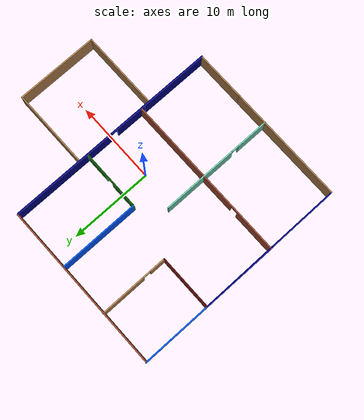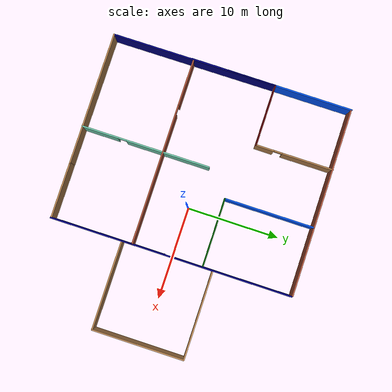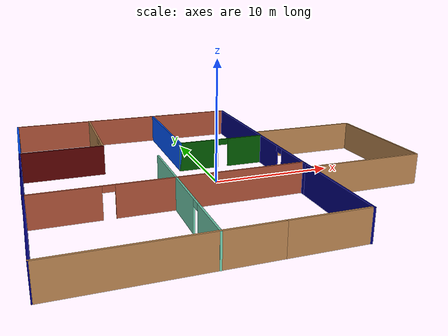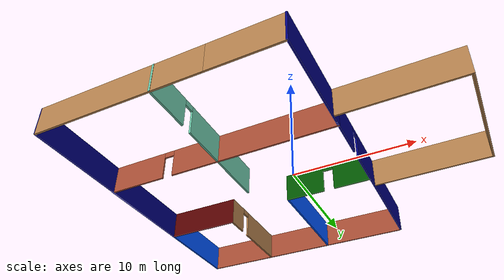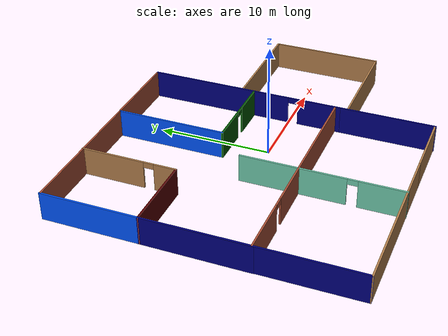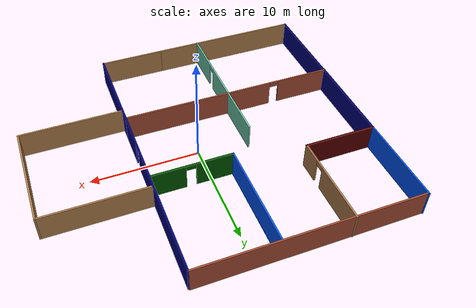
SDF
<?xml version='1.0'?>
<sdf version='1.6'>
  <model name='RGB_Walls_And_Doors'>
    <link name='Wall_13'>
      <pose frame=''>-4.768 13.0532 0 0 -0 3.14159</pose>
      <self_collide>0</self_collide>
      <kinematic>0</kinematic>
      <visual name='Wall_13_Visual'>
        <pose frame=''>0 0 1.25 0 -0 0</pose>
        <geometry>
          <box>
            <size>20.35 0.15 2.5</size>
          </box>
        </geometry>
        <material>
          <script>
            <uri>file://media/materials/scripts/gazebo.material</uri>
            <name>Gazebo/Bricks</name>
          </script>
          <ambient>1 1 1 1</ambient>
          <diffuse>1 1 1 1</diffuse>
          <specular>0.2 0.2 0.2 1</specular>
          <emissive>0 0 0 1</emissive>
        </material>
        <cast_shadows>1</cast_shadows>
        <transparency>0</transparency>
      </visual>
      <collision name='Wall_13_Collision'>
        <laser_retro>0</laser_retro>
        <max_contacts>10</max_contacts>
        <pose frame=''>0 0 1.25 0 -0 0</pose>
        <geometry>
          <box>
            <size>20.35 0.15 2.5</size>
          </box>
        </geometry>
        <surface>
          <friction>
            <ode>
              <mu>1</mu>
              <mu2>1</mu2>
              <fdir1>0 0 0</fdir1>
              <slip1>0</slip1>
              <slip2>0</slip2>
            </ode>
            <torsional>
              <coefficient>1</coefficient>
              <patch_radius>0</patch_radius>
              <surface_radius>0</surface_radius>
              <use_patch_radius>1</use_patch_radius>
              <ode>
                <slip>0</slip>
              </ode>
            </torsional>
          </friction>
          <bounce>
            <restitution_coefficient>0</restitution_coefficient>
            <threshold>1e+06</threshold>
          </bounce>
          <contact>
            <collide_without_contact>0</collide_without_contact>
            <collide_without_contact_bitmask>1</collide_without_contact_bitmask>
            <collide_bitmask>1</collide_bitmask>
            <ode>
              <soft_cfm>0</soft_cfm>
              <soft_erp>0.2</soft_erp>
              <kp>1e+13</kp>
              <kd>1</kd>
              <max_vel>0.01</max_vel>
              <min_depth>0</min_depth>
            </ode>
            <bullet>
              <split_impulse>1</split_impulse>
              <split_impulse_penetration_threshold>-0.01</split_impulse_penetration_threshold>
              <soft_cfm>0</soft_cfm>
              <soft_erp>0.2</soft_erp>
              <kp>1e+13</kp>
              <kd>1</kd>
            </bullet>
          </contact>
        </surface>
      </collision>
    </link>
    <link name='Wall_15'>
      <pose frame=''>-7.693 -13.0468 0 0 -0 3.14159</pose>
      <self_collide>0</self_collide>
      <kinematic>0</kinematic>
      <visual name='Wall_15_Visual'>
        <pose frame=''>0 0 1.25 0 -0 0</pose>
        <geometry>
          <box>
            <size>14.5 0.15 2.5</size>
          </box>
        </geometry>
        <material>
          <script>
            <uri>file://media/materials/scripts/gazebo.material</uri>
            <name>Gazebo/Wood</name>
          </script>
          <ambient>1 1 1 1</ambient>
          <diffuse>1 1 1 1</diffuse>
          <specular>0.2 0.2 0.2 1</specular>
          <emissive>0 0 0 1</emissive>
        </material>
        <cast_shadows>1</cast_shadows>
        <transparency>0</transparency>
      </visual>
      <collision name='Wall_15_Collision'>
        <laser_retro>0</laser_retro>
        <max_contacts>10</max_contacts>
        <pose frame=''>0 0 1.25 0 -0 0</pose>
        <geometry>
          <box>
            <size>14.5 0.15 2.5</size>
          </box>
        </geometry>
        <surface>
          <friction>
            <ode>
              <mu>1</mu>
              <mu2>1</mu2>
              <fdir1>0 0 0</fdir1>
              <slip1>0</slip1>
              <slip2>0</slip2>
            </ode>
            <torsional>
              <coefficient>1</coefficient>
              <patch_radius>0</patch_radius>
              <surface_radius>0</surface_radius>
              <use_patch_radius>1</use_patch_radius>
              <ode>
                <slip>0</slip>
              </ode>
            </torsional>
          </friction>
          <bounce>
            <restitution_coefficient>0</restitution_coefficient>
            <threshold>1e+06</threshold>
          </bounce>
          <contact>
            <collide_without_contact>0</collide_without_contact>
            <collide_without_contact_bitmask>1</collide_without_contact_bitmask>
            <collide_bitmask>1</collide_bitmask>
            <ode>
              <soft_cfm>0</soft_cfm>
              <soft_erp>0.2</soft_erp>
              <kp>1e+13</kp>
              <kd>1</kd>
              <max_vel>0.01</max_vel>
              <min_depth>0</min_depth>
            </ode>
            <bullet>
              <split_impulse>1</split_impulse>
              <split_impulse_penetration_threshold>-0.01</split_impulse_penetration_threshold>
              <soft_cfm>0</soft_cfm>
              <soft_erp>0.2</soft_erp>
              <kp>1e+13</kp>
              <kd>1</kd>
            </bullet>
          </contact>
        </surface>
      </collision>
    </link>
    <link name='Wall_19'>
      <pose frame=''>14.9404 -0.436235 0 0 -0 1.5708</pose>
      <self_collide>0</self_collide>
      <kinematic>0</kinematic>
      <visual name='Wall_19_Visual'>
        <pose frame=''>0 0 1.25 0 -0 0</pose>
        <geometry>
          <box>
            <size>10 0.15 2.5</size>
          </box>
        </geometry>
        <material>
          <script>
            <uri>file://media/materials/scripts/gazebo.material</uri>
            <name>Gazebo/Wood</name>
          </script>
          <ambient>1 1 1 1</ambient>
          <diffuse>1 1 1 1</diffuse>
          <specular>0.2 0.2 0.2 1</specular>
          <emissive>0 0 0 1</emissive>
        </material>
        <cast_shadows>1</cast_shadows>
        <transparency>0</transparency>
      </visual>
      <collision name='Wall_19_Collision'>
        <laser_retro>0</laser_retro>
        <max_contacts>10</max_contacts>
        <pose frame=''>0 0 1.25 0 -0 0</pose>
        <geometry>
          <box>
            <size>10 0.15 2.5</size>
          </box>
        </geometry>
        <surface>
          <friction>
            <ode>
              <mu>1</mu>
              <mu2>1</mu2>
              <fdir1>0 0 0</fdir1>
              <slip1>0</slip1>
              <slip2>0</slip2>
            </ode>
            <torsional>
              <coefficient>1</coefficient>
              <patch_radius>0</patch_radius>
              <surface_radius>0</surface_radius>
              <use_patch_radius>1</use_patch_radius>
              <ode>
                <slip>0</slip>
              </ode>
            </torsional>
          </friction>
          <bounce>
            <restitution_coefficient>0</restitution_coefficient>
            <threshold>1e+06</threshold>
          </bounce>
          <contact>
            <collide_without_contact>0</collide_without_contact>
            <collide_without_contact_bitmask>1</collide_without_contact_bitmask>
            <collide_bitmask>1</collide_bitmask>
            <ode>
              <soft_cfm>0</soft_cfm>
              <soft_erp>0.2</soft_erp>
              <kp>1e+13</kp>
              <kd>1</kd>
              <max_vel>0.01</max_vel>
              <min_depth>0</min_depth>
            </ode>
            <bullet>
              <split_impulse>1</split_impulse>
              <split_impulse_penetration_threshold>-0.01</split_impulse_penetration_threshold>
              <soft_cfm>0</soft_cfm>
              <soft_erp>0.2</soft_erp>
              <kp>1e+13</kp>
              <kd>1</kd>
            </bullet>
          </contact>
        </surface>
      </collision>
    </link>
    <link name='Wall_23'>
      <pose frame=''>1.6654 3.38876 0 0 -0 3.14159</pose>
      <self_collide>0</self_collide>
      <kinematic>0</kinematic>
      <visual name='Wall_23_Visual_0'>
        <pose frame=''>-2.17368 0 1.25 0 -0 0</pose>
        <geometry>
          <box>
            <size>3.15264 0.15 2.5</size>
          </box>
        </geometry>
        <material>
          <script>
            <uri>file://media/materials/scripts/gazebo.material</uri>
            <name>Gazebo/Grey</name>
          </script>
          <ambient>0 0.333333 0 1</ambient>
          <diffuse>0.7 0.7 0.7 1</diffuse>
          <specular>0.01 0.01 0.01 1</specular>
          <emissive>0 0 0 1</emissive>
        </material>
        <cast_shadows>1</cast_shadows>
        <transparency>0</transparency>
      </visual>
      <visual name='Wall_23_Visual_1'>
        <pose frame=''>2.02632 0 1.25 0 -0 0</pose>
        <geometry>
          <box>
            <size>3.44736 0.15 2.5</size>
          </box>
        </geometry>
        <material>
          <script>
            <uri>file://media/materials/scripts/gazebo.material</uri>
            <name>Gazebo/Grey</name>
          </script>
          <ambient>0 0.333333 0 1</ambient>
          <diffuse>0.7 0.7 0.7 1</diffuse>
          <specular>0.01 0.01 0.01 1</specular>
          <emissive>0 0 0 1</emissive>
        </material>
        <cast_shadows>1</cast_shadows>
        <transparency>0</transparency>
      </visual>
      <visual name='Wall_23_Visual_2'>
        <pose frame=''>-0.147364 0 2.25 0 -0 0</pose>
        <geometry>
          <box>
            <size>0.9 0.15 0.5</size>
          </box>
        </geometry>
        <material>
          <script>
            <uri>file://media/materials/scripts/gazebo.material</uri>
            <name>Gazebo/Grey</name>
          </script>
          <ambient>0 0.333333 0 1</ambient>
          <diffuse>0.7 0.7 0.7 1</diffuse>
          <specular>0.01 0.01 0.01 1</specular>
          <emissive>0 0 0 1</emissive>
        </material>
        <cast_shadows>1</cast_shadows>
        <transparency>0</transparency>
      </visual>
      <collision name='Wall_23_Collision_0'>
        <laser_retro>0</laser_retro>
        <max_contacts>10</max_contacts>
        <pose frame=''>-2.17368 0 1.25 0 -0 0</pose>
        <geometry>
          <box>
            <size>3.15264 0.15 2.5</size>
          </box>
        </geometry>
        <surface>
          <friction>
            <ode>
              <mu>1</mu>
              <mu2>1</mu2>
              <fdir1>0 0 0</fdir1>
              <slip1>0</slip1>
              <slip2>0</slip2>
            </ode>
            <torsional>
              <coefficient>1</coefficient>
              <patch_radius>0</patch_radius>
              <surface_radius>0</surface_radius>
              <use_patch_radius>1</use_patch_radius>
              <ode>
                <slip>0</slip>
              </ode>
            </torsional>
          </friction>
          <bounce>
            <restitution_coefficient>0</restitution_coefficient>
            <threshold>1e+06</threshold>
          </bounce>
          <contact>
            <collide_without_contact>0</collide_without_contact>
            <collide_without_contact_bitmask>1</collide_without_contact_bitmask>
            <collide_bitmask>1</collide_bitmask>
            <ode>
              <soft_cfm>0</soft_cfm>
              <soft_erp>0.2</soft_erp>
              <kp>1e+13</kp>
              <kd>1</kd>
              <max_vel>0.01</max_vel>
              <min_depth>0</min_depth>
            </ode>
            <bullet>
              <split_impulse>1</split_impulse>
              <split_impulse_penetration_threshold>-0.01</split_impulse_penetration_threshold>
              <soft_cfm>0</soft_cfm>
              <soft_erp>0.2</soft_erp>
              <kp>1e+13</kp>
              <kd>1</kd>
            </bullet>
          </contact>
        </surface>
      </collision>
      <collision name='Wall_23_Collision_1'>
        <laser_retro>0</laser_retro>
        <max_contacts>10</max_contacts>
        <pose frame=''>2.02632 0 1.25 0 -0 0</pose>
        <geometry>
          <box>
            <size>3.44736 0.15 2.5</size>
          </box>
        </geometry>
        <surface>
          <friction>
            <ode>
              <mu>1</mu>
              <mu2>1</mu2>
              <fdir1>0 0 0</fdir1>
              <slip1>0</slip1>
              <slip2>0</slip2>
            </ode>
            <torsional>
              <coefficient>1</coefficient>
              <patch_radius>0</patch_radius>
              <surface_radius>0</surface_radius>
              <use_patch_radius>1</use_patch_radius>
              <ode>
                <slip>0</slip>
              </ode>
            </torsional>
          </friction>
          <bounce>
            <restitution_coefficient>0</restitution_coefficient>
            <threshold>1e+06</threshold>
          </bounce>
          <contact>
            <collide_without_contact>0</collide_without_contact>
            <collide_without_contact_bitmask>1</collide_without_contact_bitmask>
            <collide_bitmask>1</collide_bitmask>
            <ode>
              <soft_cfm>0</soft_cfm>
              <soft_erp>0.2</soft_erp>
              <kp>1e+13</kp>
              <kd>1</kd>
              <max_vel>0.01</max_vel>
              <min_depth>0</min_depth>
            </ode>
            <bullet>
              <split_impulse>1</split_impulse>
              <split_impulse_penetration_threshold>-0.01</split_impulse_penetration_threshold>
              <soft_cfm>0</soft_cfm>
              <soft_erp>0.2</soft_erp>
              <kp>1e+13</kp>
              <kd>1</kd>
            </bullet>
          </contact>
        </surface>
      </collision>
      <collision name='Wall_23_Collision_2'>
        <laser_retro>0</laser_retro>
        <max_contacts>10</max_contacts>
        <pose frame=''>-0.147364 0 2.25 0 -0 0</pose>
        <geometry>
          <box>
            <size>0.9 0.15 0.5</size>
          </box>
        </geometry>
        <surface>
          <friction>
            <ode>
              <mu>1</mu>
              <mu2>1</mu2>
              <fdir1>0 0 0</fdir1>
              <slip1>0</slip1>
              <slip2>0</slip2>
            </ode>
            <torsional>
              <coefficient>1</coefficient>
              <patch_radius>0</patch_radius>
              <surface_radius>0</surface_radius>
              <use_patch_radius>1</use_patch_radius>
              <ode>
                <slip>0</slip>
              </ode>
            </torsional>
          </friction>
          <bounce>
            <restitution_coefficient>0</restitution_coefficient>
            <threshold>1e+06</threshold>
          </bounce>
          <contact>
            <collide_without_contact>0</collide_without_contact>
            <collide_without_contact_bitmask>1</collide_without_contact_bitmask>
            <collide_bitmask>1</collide_bitmask>
            <ode>
              <soft_cfm>0</soft_cfm>
              <soft_erp>0.2</soft_erp>
              <kp>1e+13</kp>
              <kd>1</kd>
              <max_vel>0.01</max_vel>
              <min_depth>0</min_depth>
            </ode>
            <bullet>
              <split_impulse>1</split_impulse>
              <split_impulse_penetration_threshold>-0.01</split_impulse_penetration_threshold>
              <soft_cfm>0</soft_cfm>
              <soft_erp>0.2</soft_erp>
              <kp>1e+13</kp>
              <kd>1</kd>
            </bullet>
          </contact>
        </surface>
      </collision>
    </link>
    <link name='Wall_24'>
      <pose frame=''>-2.0096 8.18877 0 0 -0 1.5708</pose>
      <self_collide>0</self_collide>
      <kinematic>0</kinematic>
      <visual name='Wall_24_Visual'>
        <pose frame=''>0 0 1.25 0 -0 0</pose>
        <geometry>
          <box>
            <size>9.75 0.15 2.5</size>
          </box>
        </geometry>
        <material>
          <script>
            <uri>file://media/materials/scripts/gazebo.material</uri>
            <name>Gazebo/Grey</name>
          </script>
          <ambient>0 0.333333 1 1</ambient>
          <diffuse>0.7 0.7 0.7 1</diffuse>
          <specular>0.01 0.01 0.01 1</specular>
          <emissive>0 0 0 1</emissive>
        </material>
        <cast_shadows>1</cast_shadows>
        <transparency>0</transparency>
      </visual>
      <collision name='Wall_24_Collision'>
        <laser_retro>0</laser_retro>
        <max_contacts>10</max_contacts>
        <pose frame=''>0 0 1.25 0 -0 0</pose>
        <geometry>
          <box>
            <size>9.75 0.15 2.5</size>
          </box>
        </geometry>
        <surface>
          <friction>
            <ode>
              <mu>1</mu>
              <mu2>1</mu2>
              <fdir1>0 0 0</fdir1>
              <slip1>0</slip1>
              <slip2>0</slip2>
            </ode>
            <torsional>
              <coefficient>1</coefficient>
              <patch_radius>0</patch_radius>
              <surface_radius>0</surface_radius>
              <use_patch_radius>1</use_patch_radius>
              <ode>
                <slip>0</slip>
              </ode>
            </torsional>
          </friction>
          <bounce>
            <restitution_coefficient>0</restitution_coefficient>
            <threshold>1e+06</threshold>
          </bounce>
          <contact>
            <collide_without_contact>0</collide_without_contact>
            <collide_without_contact_bitmask>1</collide_without_contact_bitmask>
            <collide_bitmask>1</collide_bitmask>
            <ode>
              <soft_cfm>0</soft_cfm>
              <soft_erp>0.2</soft_erp>
              <kp>1e+13</kp>
              <kd>1</kd>
              <max_vel>0.01</max_vel>
              <min_depth>0</min_depth>
            </ode>
            <bullet>
              <split_impulse>1</split_impulse>
              <split_impulse_penetration_threshold>-0.01</split_impulse_penetration_threshold>
              <soft_cfm>0</soft_cfm>
              <soft_erp>0.2</soft_erp>
              <kp>1e+13</kp>
              <kd>1</kd>
            </bullet>
          </contact>
        </surface>
      </collision>
    </link>
    <link name='Wall_32'>
      <pose frame=''>-8.34009 8.91706 0 0 -0 1.5708</pose>
      <self_collide>0</self_collide>
      <kinematic>0</kinematic>
      <visual name='Wall_32_Visual_0'>
        <pose frame=''>-3.23654 0 1.25 0 -0 0</pose>
        <geometry>
          <box>
            <size>2.02691 0.15 2.5</size>
          </box>
        </geometry>
        <material>
          <script>
            <uri>file://media/materials/scripts/gazebo.material</uri>
            <name>Gazebo/Wood</name>
          </script>
          <ambient>1 1 1 1</ambient>
          <diffuse>1 1 1 1</diffuse>
          <specular>0.2 0.2 0.2 1</specular>
          <emissive>0 0 0 1</emissive>
        </material>
        <cast_shadows>1</cast_shadows>
        <transparency>0</transparency>
      </visual>
      <visual name='Wall_32_Visual_1'>
        <pose frame=''>1.46346 0 1.25 0 -0 0</pose>
        <geometry>
          <box>
            <size>5.57309 0.15 2.5</size>
          </box>
        </geometry>
        <material>
          <script>
            <uri>file://media/materials/scripts/gazebo.material</uri>
            <name>Gazebo/Wood</name>
          </script>
          <ambient>1 1 1 1</ambient>
          <diffuse>1 1 1 1</diffuse>
          <specular>0.2 0.2 0.2 1</specular>
          <emissive>0 0 0 1</emissive>
        </material>
        <cast_shadows>1</cast_shadows>
        <transparency>0</transparency>
      </visual>
      <visual name='Wall_32_Visual_2'>
        <pose frame=''>-1.77309 0 2.25 0 -0 0</pose>
        <geometry>
          <box>
            <size>0.9 0.15 0.5</size>
          </box>
        </geometry>
        <material>
          <script>
            <uri>file://media/materials/scripts/gazebo.material</uri>
            <name>Gazebo/Wood</name>
          </script>
          <ambient>1 1 1 1</ambient>
          <diffuse>1 1 1 1</diffuse>
          <specular>0.2 0.2 0.2 1</specular>
          <emissive>0 0 0 1</emissive>
        </material>
        <cast_shadows>1</cast_shadows>
        <transparency>0</transparency>
      </visual>
      <collision name='Wall_32_Collision_0'>
        <laser_retro>0</laser_retro>
        <max_contacts>10</max_contacts>
        <pose frame=''>-3.23654 0 1.25 0 -0 0</pose>
        <geometry>
          <box>
            <size>2.02691 0.15 2.5</size>
          </box>
        </geometry>
        <surface>
          <friction>
            <ode>
              <mu>1</mu>
              <mu2>1</mu2>
              <fdir1>0 0 0</fdir1>
              <slip1>0</slip1>
              <slip2>0</slip2>
            </ode>
            <torsional>
              <coefficient>1</coefficient>
              <patch_radius>0</patch_radius>
              <surface_radius>0</surface_radius>
              <use_patch_radius>1</use_patch_radius>
              <ode>
                <slip>0</slip>
              </ode>
            </torsional>
          </friction>
          <bounce>
            <restitution_coefficient>0</restitution_coefficient>
            <threshold>1e+06</threshold>
          </bounce>
          <contact>
            <collide_without_contact>0</collide_without_contact>
            <collide_without_contact_bitmask>1</collide_without_contact_bitmask>
            <collide_bitmask>1</collide_bitmask>
            <ode>
              <soft_cfm>0</soft_cfm>
              <soft_erp>0.2</soft_erp>
              <kp>1e+13</kp>
              <kd>1</kd>
              <max_vel>0.01</max_vel>
              <min_depth>0</min_depth>
            </ode>
            <bullet>
              <split_impulse>1</split_impulse>
              <split_impulse_penetration_threshold>-0.01</split_impulse_penetration_threshold>
              <soft_cfm>0</soft_cfm>
              <soft_erp>0.2</soft_erp>
              <kp>1e+13</kp>
              <kd>1</kd>
            </bullet>
          </contact>
        </surface>
      </collision>
      <collision name='Wall_32_Collision_1'>
        <laser_retro>0</laser_retro>
        <max_contacts>10</max_contacts>
        <pose frame=''>1.46346 0 1.25 0 -0 0</pose>
        <geometry>
          <box>
            <size>5.57309 0.15 2.5</size>
          </box>
        </geometry>
        <surface>
          <friction>
            <ode>
              <mu>1</mu>
              <mu2>1</mu2>
              <fdir1>0 0 0</fdir1>
              <slip1>0</slip1>
              <slip2>0</slip2>
            </ode>
            <torsional>
              <coefficient>1</coefficient>
              <patch_radius>0</patch_radius>
              <surface_radius>0</surface_radius>
              <use_patch_radius>1</use_patch_radius>
              <ode>
                <slip>0</slip>
              </ode>
            </torsional>
          </friction>
          <bounce>
            <restitution_coefficient>0</restitution_coefficient>
            <threshold>1e+06</threshold>
          </bounce>
          <contact>
            <collide_without_contact>0</collide_without_contact>
            <collide_without_contact_bitmask>1</collide_without_contact_bitmask>
            <collide_bitmask>1</collide_bitmask>
            <ode>
              <soft_cfm>0</soft_cfm>
              <soft_erp>0.2</soft_erp>
              <kp>1e+13</kp>
              <kd>1</kd>
              <max_vel>0.01</max_vel>
              <min_depth>0</min_depth>
            </ode>
            <bullet>
              <split_impulse>1</split_impulse>
              <split_impulse_penetration_threshold>-0.01</split_impulse_penetration_threshold>
              <soft_cfm>0</soft_cfm>
              <soft_erp>0.2</soft_erp>
              <kp>1e+13</kp>
              <kd>1</kd>
            </bullet>
          </contact>
        </surface>
      </collision>
      <collision name='Wall_32_Collision_2'>
        <laser_retro>0</laser_retro>
        <max_contacts>10</max_contacts>
        <pose frame=''>-1.77309 0 2.25 0 -0 0</pose>
        <geometry>
          <box>
            <size>0.9 0.15 0.5</size>
          </box>
        </geometry>
        <surface>
          <friction>
            <ode>
              <mu>1</mu>
              <mu2>1</mu2>
              <fdir1>0 0 0</fdir1>
              <slip1>0</slip1>
              <slip2>0</slip2>
            </ode>
            <torsional>
              <coefficient>1</coefficient>
              <patch_radius>0</patch_radius>
              <surface_radius>0</surface_radius>
              <use_patch_radius>1</use_patch_radius>
              <ode>
                <slip>0</slip>
              </ode>
            </torsional>
          </friction>
          <bounce>
            <restitution_coefficient>0</restitution_coefficient>
            <threshold>1e+06</threshold>
          </bounce>
          <contact>
            <collide_without_contact>0</collide_without_contact>
            <collide_without_contact_bitmask>1</collide_without_contact_bitmask>
            <collide_bitmask>1</collide_bitmask>
            <ode>
              <soft_cfm>0</soft_cfm>
              <soft_erp>0.2</soft_erp>
              <kp>1e+13</kp>
              <kd>1</kd>
              <max_vel>0.01</max_vel>
              <min_depth>0</min_depth>
            </ode>
            <bullet>
              <split_impulse>1</split_impulse>
              <split_impulse_penetration_threshold>-0.01</split_impulse_penetration_threshold>
              <soft_cfm>0</soft_cfm>
              <soft_erp>0.2</soft_erp>
              <kp>1e+13</kp>
              <kd>1</kd>
            </bullet>
          </contact>
        </surface>
      </collision>
    </link>
    <link name='Wall_38'>
      <pose frame=''>-11.6401 4.74206 0 0 -0 3.14159</pose>
      <self_collide>0</self_collide>
      <kinematic>0</kinematic>
      <visual name='Wall_38_Visual'>
        <pose frame=''>0 0 1.25 0 -0 0</pose>
        <geometry>
          <box>
            <size>6.75 0.15 2.5</size>
          </box>
        </geometry>
        <material>
          <script>
            <uri>file://media/materials/scripts/gazebo.material</uri>
            <name>Gazebo/Grey</name>
          </script>
          <ambient>0.333333 0 0 1</ambient>
          <diffuse>0.7 0.7 0.7 1</diffuse>
          <specular>0.01 0.01 0.01 1</specular>
          <emissive>0 0 0 1</emissive>
        </material>
        <cast_shadows>1</cast_shadows>
        <transparency>0</transparency>
      </visual>
      <collision name='Wall_38_Collision'>
        <laser_retro>0</laser_retro>
        <max_contacts>10</max_contacts>
        <pose frame=''>0 0 1.25 0 -0 0</pose>
        <geometry>
          <box>
            <size>6.75 0.15 2.5</size>
          </box>
        </geometry>
        <surface>
          <friction>
            <ode>
              <mu>1</mu>
              <mu2>1</mu2>
              <fdir1>0 0 0</fdir1>
              <slip1>0</slip1>
              <slip2>0</slip2>
            </ode>
            <torsional>
              <coefficient>1</coefficient>
              <patch_radius>0</patch_radius>
              <surface_radius>0</surface_radius>
              <use_patch_radius>1</use_patch_radius>
              <ode>
                <slip>0</slip>
              </ode>
            </torsional>
          </friction>
          <bounce>
            <restitution_coefficient>0</restitution_coefficient>
            <threshold>1e+06</threshold>
          </bounce>
          <contact>
            <collide_without_contact>0</collide_without_contact>
            <collide_without_contact_bitmask>1</collide_without_contact_bitmask>
            <collide_bitmask>1</collide_bitmask>
            <ode>
              <soft_cfm>0</soft_cfm>
              <soft_erp>0.2</soft_erp>
              <kp>1e+13</kp>
              <kd>1</kd>
              <max_vel>0.01</max_vel>
              <min_depth>0</min_depth>
            </ode>
            <bullet>
              <split_impulse>1</split_impulse>
              <split_impulse_penetration_threshold>-0.01</split_impulse_penetration_threshold>
              <soft_cfm>0</soft_cfm>
              <soft_erp>0.2</soft_erp>
              <kp>1e+13</kp>
              <kd>1</kd>
            </bullet>
          </contact>
        </surface>
      </collision>
    </link>
    <link name='Wall_4'>
      <pose frame=''>2.407 -13.0468 0 0 -0 3.14159</pose>
      <self_collide>0</self_collide>
      <kinematic>0</kinematic>
      <visual name='Wall_4_Visual'>
        <pose frame=''>0 0 1.25 0 -0 0</pose>
        <geometry>
          <box>
            <size>6 0.15 2.5</size>
          </box>
        </geometry>
        <material>
          <script>
            <uri>file://media/materials/scripts/gazebo.material</uri>
            <name>Gazebo/Wood</name>
          </script>
          <ambient>1 1 1 1</ambient>
          <diffuse>1 1 1 1</diffuse>
          <specular>0.2 0.2 0.2 1</specular>
          <emissive>0 0 0 1</emissive>
        </material>
        <cast_shadows>1</cast_shadows>
        <transparency>0</transparency>
      </visual>
      <collision name='Wall_4_Collision'>
        <laser_retro>0</laser_retro>
        <max_contacts>10</max_contacts>
        <pose frame=''>0 0 1.25 0 -0 0</pose>
        <geometry>
          <box>
            <size>6 0.15 2.5</size>
          </box>
        </geometry>
        <surface>
          <friction>
            <ode>
              <mu>1</mu>
              <mu2>1</mu2>
              <fdir1>0 0 0</fdir1>
              <slip1>0</slip1>
              <slip2>0</slip2>
            </ode>
            <torsional>
              <coefficient>1</coefficient>
              <patch_radius>0</patch_radius>
              <surface_radius>0</surface_radius>
              <use_patch_radius>1</use_patch_radius>
              <ode>
                <slip>0</slip>
              </ode>
            </torsional>
          </friction>
          <bounce>
            <restitution_coefficient>0</restitution_coefficient>
            <threshold>1e+06</threshold>
          </bounce>
          <contact>
            <collide_without_contact>0</collide_without_contact>
            <collide_without_contact_bitmask>1</collide_without_contact_bitmask>
            <collide_bitmask>1</collide_bitmask>
            <ode>
              <soft_cfm>0</soft_cfm>
              <soft_erp>0.2</soft_erp>
              <kp>1e+13</kp>
              <kd>1</kd>
              <max_vel>0.01</max_vel>
              <min_depth>0</min_depth>
            </ode>
            <bullet>
              <split_impulse>1</split_impulse>
              <split_impulse_penetration_threshold>-0.01</split_impulse_penetration_threshold>
              <soft_cfm>0</soft_cfm>
              <soft_erp>0.2</soft_erp>
              <kp>1e+13</kp>
              <kd>1</kd>
            </bullet>
          </contact>
        </surface>
      </collision>
    </link>
    <link name='Wall_40'>
      <pose frame=''>-14.904 -4.15238 0 0 0 -1.56674</pose>
      <self_collide>0</self_collide>
      <kinematic>0</kinematic>
      <visual name='Wall_40_Visual'>
        <pose frame=''>0 0 1.25 0 -0 0</pose>
        <geometry>
          <box>
            <size>17.939 0.15 2.5</size>
          </box>
        </geometry>
        <material>
          <script>
            <uri>file://media/materials/scripts/gazebo.material</uri>
            <name>Gazebo/Grey</name>
          </script>
          <ambient>0 0 0.498039 1</ambient>
          <diffuse>0.7 0.7 0.7 1</diffuse>
          <specular>0.01 0.01 0.01 1</specular>
          <emissive>0 0 0 1</emissive>
        </material>
        <cast_shadows>1</cast_shadows>
        <transparency>0</transparency>
      </visual>
      <collision name='Wall_40_Collision'>
        <laser_retro>0</laser_retro>
        <max_contacts>10</max_contacts>
        <pose frame=''>0 0 1.25 0 -0 0</pose>
        <geometry>
          <box>
            <size>17.939 0.15 2.5</size>
          </box>
        </geometry>
        <surface>
          <friction>
            <ode>
              <mu>1</mu>
              <mu2>1</mu2>
              <fdir1>0 0 0</fdir1>
              <slip1>0</slip1>
              <slip2>0</slip2>
            </ode>
            <torsional>
              <coefficient>1</coefficient>
              <patch_radius>0</patch_radius>
              <surface_radius>0</surface_radius>
              <use_patch_radius>1</use_patch_radius>
              <ode>
                <slip>0</slip>
              </ode>
            </torsional>
          </friction>
          <bounce>
            <restitution_coefficient>0</restitution_coefficient>
            <threshold>1e+06</threshold>
          </bounce>
          <contact>
            <collide_without_contact>0</collide_without_contact>
            <collide_without_contact_bitmask>1</collide_without_contact_bitmask>
            <collide_bitmask>1</collide_bitmask>
            <ode>
              <soft_cfm>0</soft_cfm>
              <soft_erp>0.2</soft_erp>
              <kp>1e+13</kp>
              <kd>1</kd>
              <max_vel>0.01</max_vel>
              <min_depth>0</min_depth>
            </ode>
            <bullet>
              <split_impulse>1</split_impulse>
              <split_impulse_penetration_threshold>-0.01</split_impulse_penetration_threshold>
              <soft_cfm>0</soft_cfm>
              <soft_erp>0.2</soft_erp>
              <kp>1e+13</kp>
              <kd>1</kd>
            </bullet>
          </contact>
        </surface>
      </collision>
    </link>
    <link name='Wall_42'>
      <pose frame=''>-14.9401 8.91706 0 0 -0 1.5708</pose>
      <self_collide>0</self_collide>
      <kinematic>0</kinematic>
      <visual name='Wall_42_Visual'>
        <pose frame=''>0 0 1.25 0 -0 0</pose>
        <geometry>
          <box>
            <size>8.5 0.15 2.5</size>
          </box>
        </geometry>
        <material>
          <script>
            <uri>file://media/materials/scripts/gazebo.material</uri>
            <name>Gazebo/Grey</name>
          </script>
          <ambient>0 0.333333 1 1</ambient>
          <diffuse>0.7 0.7 0.7 1</diffuse>
          <specular>0.01 0.01 0.01 1</specular>
          <emissive>0 0 0 1</emissive>
        </material>
        <cast_shadows>1</cast_shadows>
        <transparency>0</transparency>
      </visual>
      <collision name='Wall_42_Collision'>
        <laser_retro>0</laser_retro>
        <max_contacts>10</max_contacts>
        <pose frame=''>0 0 1.25 0 -0 0</pose>
        <geometry>
          <box>
            <size>8.5 0.15 2.5</size>
          </box>
        </geometry>
        <surface>
          <friction>
            <ode>
              <mu>1</mu>
              <mu2>1</mu2>
              <fdir1>0 0 0</fdir1>
              <slip1>0</slip1>
              <slip2>0</slip2>
            </ode>
            <torsional>
              <coefficient>1</coefficient>
              <patch_radius>0</patch_radius>
              <surface_radius>0</surface_radius>
              <use_patch_radius>1</use_patch_radius>
              <ode>
                <slip>0</slip>
              </ode>
            </torsional>
          </friction>
          <bounce>
            <restitution_coefficient>0</restitution_coefficient>
            <threshold>1e+06</threshold>
          </bounce>
          <contact>
            <collide_without_contact>0</collide_without_contact>
            <collide_without_contact_bitmask>1</collide_without_contact_bitmask>
            <collide_bitmask>1</collide_bitmask>
            <ode>
              <soft_cfm>0</soft_cfm>
              <soft_erp>0.2</soft_erp>
              <kp>1e+13</kp>
              <kd>1</kd>
              <max_vel>0.01</max_vel>
              <min_depth>0</min_depth>
            </ode>
            <bullet>
              <split_impulse>1</split_impulse>
              <split_impulse_penetration_threshold>-0.01</split_impulse_penetration_threshold>
              <soft_cfm>0</soft_cfm>
              <soft_erp>0.2</soft_erp>
              <kp>1e+13</kp>
              <kd>1</kd>
            </bullet>
          </contact>
        </surface>
      </collision>
    </link>
    <link name='Wall_44'>
      <pose frame=''>-14.9401 0.192064 0 0 0 -1.5708</pose>
      <self_collide>0</self_collide>
      <kinematic>0</kinematic>
      <visual name='Wall_44_Visual'>
        <pose frame=''>0 0 1.25 0 -0 0</pose>
        <geometry>
          <box>
            <size>9.25 0.15 2.5</size>
          </box>
        </geometry>
        <material>
          <script>
            <uri>file://media/materials/scripts/gazebo.material</uri>
            <name>Gazebo/Grey</name>
          </script>
          <ambient>0 0 0.498039 1</ambient>
          <diffuse>0.7 0.7 0.7 1</diffuse>
          <specular>0.01 0.01 0.01 1</specular>
          <emissive>0 0 0 1</emissive>
        </material>
        <cast_shadows>1</cast_shadows>
        <transparency>0</transparency>
      </visual>
      <collision name='Wall_44_Collision'>
        <laser_retro>0</laser_retro>
        <max_contacts>10</max_contacts>
        <pose frame=''>0 0 1.25 0 -0 0</pose>
        <geometry>
          <box>
            <size>9.25 0.15 2.5</size>
          </box>
        </geometry>
        <surface>
          <friction>
            <ode>
              <mu>1</mu>
              <mu2>1</mu2>
              <fdir1>0 0 0</fdir1>
              <slip1>0</slip1>
              <slip2>0</slip2>
            </ode>
            <torsional>
              <coefficient>1</coefficient>
              <patch_radius>0</patch_radius>
              <surface_radius>0</surface_radius>
              <use_patch_radius>1</use_patch_radius>
              <ode>
                <slip>0</slip>
              </ode>
            </torsional>
          </friction>
          <bounce>
            <restitution_coefficient>0</restitution_coefficient>
            <threshold>1e+06</threshold>
          </bounce>
          <contact>
            <collide_without_contact>0</collide_without_contact>
            <collide_without_contact_bitmask>1</collide_without_contact_bitmask>
            <collide_bitmask>1</collide_bitmask>
            <ode>
              <soft_cfm>0</soft_cfm>
              <soft_erp>0.2</soft_erp>
              <kp>1e+13</kp>
              <kd>1</kd>
              <max_vel>0.01</max_vel>
              <min_depth>0</min_depth>
            </ode>
            <bullet>
              <split_impulse>1</split_impulse>
              <split_impulse_penetration_threshold>-0.01</split_impulse_penetration_threshold>
              <soft_cfm>0</soft_cfm>
              <soft_erp>0.2</soft_erp>
              <kp>1e+13</kp>
              <kd>1</kd>
            </bullet>
          </contact>
        </surface>
      </collision>
    </link>
    <link name='Wall_53'>
      <pose frame=''>-4.73809 -4.24206 0 0 -0 0</pose>
      <self_collide>0</self_collide>
      <kinematic>0</kinematic>
      <visual name='Wall_53_Visual_0'>
        <pose frame=''>-7.67312 0 1.25 0 -0 0</pose>
        <geometry>
          <box>
            <size>5.15375 0.15 2.5</size>
          </box>
        </geometry>
        <material>
          <script>
            <uri>file://media/materials/scripts/gazebo.material</uri>
            <name>Gazebo/Bricks</name>
          </script>
          <ambient>1 1 1 1</ambient>
          <diffuse>1 1 1 1</diffuse>
          <specular>0.2 0.2 0.2 1</specular>
          <emissive>0 0 0 1</emissive>
        </material>
        <cast_shadows>1</cast_shadows>
        <transparency>0</transparency>
      </visual>
      <visual name='Wall_53_Visual_1'>
        <pose frame=''>3.02688 0 1.25 0 -0 0</pose>
        <geometry>
          <box>
            <size>14.4462 0.15 2.5</size>
          </box>
        </geometry>
        <material>
          <script>
            <uri>file://media/materials/scripts/gazebo.material</uri>
            <name>Gazebo/Bricks</name>
          </script>
          <ambient>1 1 1 1</ambient>
          <diffuse>1 1 1 1</diffuse>
          <specular>0.2 0.2 0.2 1</specular>
          <emissive>0 0 0 1</emissive>
        </material>
        <cast_shadows>1</cast_shadows>
        <transparency>0</transparency>
      </visual>
      <visual name='Wall_53_Visual_2'>
        <pose frame=''>-4.64625 0 2.25 0 -0 0</pose>
        <geometry>
          <box>
            <size>0.9 0.15 0.5</size>
          </box>
        </geometry>
        <material>
          <script>
            <uri>file://media/materials/scripts/gazebo.material</uri>
            <name>Gazebo/Bricks</name>
          </script>
          <ambient>1 1 1 1</ambient>
          <diffuse>1 1 1 1</diffuse>
          <specular>0.2 0.2 0.2 1</specular>
          <emissive>0 0 0 1</emissive>
        </material>
        <cast_shadows>1</cast_shadows>
        <transparency>0</transparency>
      </visual>
      <collision name='Wall_53_Collision_0'>
        <laser_retro>0</laser_retro>
        <max_contacts>10</max_contacts>
        <pose frame=''>-7.67312 0 1.25 0 -0 0</pose>
        <geometry>
          <box>
            <size>5.15375 0.15 2.5</size>
          </box>
        </geometry>
        <surface>
          <friction>
            <ode>
              <mu>1</mu>
              <mu2>1</mu2>
              <fdir1>0 0 0</fdir1>
              <slip1>0</slip1>
              <slip2>0</slip2>
            </ode>
            <torsional>
              <coefficient>1</coefficient>
              <patch_radius>0</patch_radius>
              <surface_radius>0</surface_radius>
              <use_patch_radius>1</use_patch_radius>
              <ode>
                <slip>0</slip>
              </ode>
            </torsional>
          </friction>
          <bounce>
            <restitution_coefficient>0</restitution_coefficient>
            <threshold>1e+06</threshold>
          </bounce>
          <contact>
            <collide_without_contact>0</collide_without_contact>
            <collide_without_contact_bitmask>1</collide_without_contact_bitmask>
            <collide_bitmask>1</collide_bitmask>
            <ode>
              <soft_cfm>0</soft_cfm>
              <soft_erp>0.2</soft_erp>
              <kp>1e+13</kp>
              <kd>1</kd>
              <max_vel>0.01</max_vel>
              <min_depth>0</min_depth>
            </ode>
            <bullet>
              <split_impulse>1</split_impulse>
              <split_impulse_penetration_threshold>-0.01</split_impulse_penetration_threshold>
              <soft_cfm>0</soft_cfm>
              <soft_erp>0.2</soft_erp>
              <kp>1e+13</kp>
              <kd>1</kd>
            </bullet>
          </contact>
        </surface>
      </collision>
      <collision name='Wall_53_Collision_1'>
        <laser_retro>0</laser_retro>
        <max_contacts>10</max_contacts>
        <pose frame=''>3.02688 0 1.25 0 -0 0</pose>
        <geometry>
          <box>
            <size>14.4462 0.15 2.5</size>
          </box>
        </geometry>
        <surface>
          <friction>
            <ode>
              <mu>1</mu>
              <mu2>1</mu2>
              <fdir1>0 0 0</fdir1>
              <slip1>0</slip1>
              <slip2>0</slip2>
            </ode>
            <torsional>
              <coefficient>1</coefficient>
              <patch_radius>0</patch_radius>
              <surface_radius>0</surface_radius>
              <use_patch_radius>1</use_patch_radius>
              <ode>
                <slip>0</slip>
              </ode>
            </torsional>
          </friction>
          <bounce>
            <restitution_coefficient>0</restitution_coefficient>
            <threshold>1e+06</threshold>
          </bounce>
          <contact>
            <collide_without_contact>0</collide_without_contact>
            <collide_without_contact_bitmask>1</collide_without_contact_bitmask>
            <collide_bitmask>1</collide_bitmask>
            <ode>
              <soft_cfm>0</soft_cfm>
              <soft_erp>0.2</soft_erp>
              <kp>1e+13</kp>
              <kd>1</kd>
              <max_vel>0.01</max_vel>
              <min_depth>0</min_depth>
            </ode>
            <bullet>
              <split_impulse>1</split_impulse>
              <split_impulse_penetration_threshold>-0.01</split_impulse_penetration_threshold>
              <soft_cfm>0</soft_cfm>
              <soft_erp>0.2</soft_erp>
              <kp>1e+13</kp>
              <kd>1</kd>
            </bullet>
          </contact>
        </surface>
      </collision>
      <collision name='Wall_53_Collision_2'>
        <laser_retro>0</laser_retro>
        <max_contacts>10</max_contacts>
        <pose frame=''>-4.64625 0 2.25 0 -0 0</pose>
        <geometry>
          <box>
            <size>0.9 0.15 0.5</size>
          </box>
        </geometry>
        <surface>
          <friction>
            <ode>
              <mu>1</mu>
              <mu2>1</mu2>
              <fdir1>0 0 0</fdir1>
              <slip1>0</slip1>
              <slip2>0</slip2>
            </ode>
            <torsional>
              <coefficient>1</coefficient>
              <patch_radius>0</patch_radius>
              <surface_radius>0</surface_radius>
              <use_patch_radius>1</use_patch_radius>
              <ode>
                <slip>0</slip>
              </ode>
            </torsional>
          </friction>
          <bounce>
            <restitution_coefficient>0</restitution_coefficient>
            <threshold>1e+06</threshold>
          </bounce>
          <contact>
            <collide_without_contact>0</collide_without_contact>
            <collide_without_contact_bitmask>1</collide_without_contact_bitmask>
            <collide_bitmask>1</collide_bitmask>
            <ode>
              <soft_cfm>0</soft_cfm>
              <soft_erp>0.2</soft_erp>
              <kp>1e+13</kp>
              <kd>1</kd>
              <max_vel>0.01</max_vel>
              <min_depth>0</min_depth>
            </ode>
            <bullet>
              <split_impulse>1</split_impulse>
              <split_impulse_penetration_threshold>-0.01</split_impulse_penetration_threshold>
              <soft_cfm>0</soft_cfm>
              <soft_erp>0.2</soft_erp>
              <kp>1e+13</kp>
              <kd>1</kd>
            </bullet>
          </contact>
        </surface>
      </collision>
    </link>
    <link name='Wall_55'>
      <pose frame=''>5.43691 -8.66706 0 0 0 -1.5708</pose>
      <self_collide>0</self_collide>
      <kinematic>0</kinematic>
      <visual name='Wall_55_Visual'>
        <pose frame=''>0 0 1.25 0 -0 0</pose>
        <geometry>
          <box>
            <size>9 0.15 2.5</size>
          </box>
        </geometry>
        <material>
          <script>
            <uri>file://media/materials/scripts/gazebo.material</uri>
            <name>Gazebo/Grey</name>
          </script>
          <ambient>0 0 0.498039 1</ambient>
          <diffuse>0.7 0.7 0.7 1</diffuse>
          <specular>0.01 0.01 0.01 1</specular>
          <emissive>0 0 0 1</emissive>
        </material>
        <cast_shadows>1</cast_shadows>
        <transparency>0</transparency>
      </visual>
      <collision name='Wall_55_Collision'>
        <laser_retro>0</laser_retro>
        <max_contacts>10</max_contacts>
        <pose frame=''>0 0 1.25 0 -0 0</pose>
        <geometry>
          <box>
            <size>9 0.15 2.5</size>
          </box>
        </geometry>
        <surface>
          <friction>
            <ode>
              <mu>1</mu>
              <mu2>1</mu2>
              <fdir1>0 0 0</fdir1>
              <slip1>0</slip1>
              <slip2>0</slip2>
            </ode>
            <torsional>
              <coefficient>1</coefficient>
              <patch_radius>0</patch_radius>
              <surface_radius>0</surface_radius>
              <use_patch_radius>1</use_patch_radius>
              <ode>
                <slip>0</slip>
              </ode>
            </torsional>
          </friction>
          <bounce>
            <restitution_coefficient>0</restitution_coefficient>
            <threshold>1e+06</threshold>
          </bounce>
          <contact>
            <collide_without_contact>0</collide_without_contact>
            <collide_without_contact_bitmask>1</collide_without_contact_bitmask>
            <collide_bitmask>1</collide_bitmask>
            <ode>
              <soft_cfm>0</soft_cfm>
              <soft_erp>0.2</soft_erp>
              <kp>1e+13</kp>
              <kd>1</kd>
              <max_vel>0.01</max_vel>
              <min_depth>0</min_depth>
            </ode>
            <bullet>
              <split_impulse>1</split_impulse>
              <split_impulse_penetration_threshold>-0.01</split_impulse_penetration_threshold>
              <soft_cfm>0</soft_cfm>
              <soft_erp>0.2</soft_erp>
              <kp>1e+13</kp>
              <kd>1</kd>
            </bullet>
          </contact>
        </surface>
      </collision>
    </link>
    <link name='Wall_64'>
      <pose frame=''>5.43149 4.17662 0 0 -0 1.5708</pose>
      <self_collide>0</self_collide>
      <kinematic>0</kinematic>
      <visual name='Wall_64_Visual_0'>
        <pose frame=''>-6.91083 0 1.25 0 -0 0</pose>
        <geometry>
          <box>
            <size>3.92834 0.15 2.5</size>
          </box>
        </geometry>
        <material>
          <script>
            <uri>file://media/materials/scripts/gazebo.material</uri>
            <name>Gazebo/Grey</name>
          </script>
          <ambient>0 0 0.498039 1</ambient>
          <diffuse>0.7 0.7 0.7 1</diffuse>
          <specular>0.01 0.01 0.01 1</specular>
          <emissive>0 0 0 1</emissive>
        </material>
        <cast_shadows>1</cast_shadows>
        <transparency>0</transparency>
      </visual>
      <visual name='Wall_64_Visual_1'>
        <pose frame=''>2.41417 0 1.25 0 -0 0</pose>
        <geometry>
          <box>
            <size>12.9217 0.15 2.5</size>
          </box>
        </geometry>
        <material>
          <script>
            <uri>file://media/materials/scripts/gazebo.material</uri>
            <name>Gazebo/Grey</name>
          </script>
          <ambient>0 0 0.498039 1</ambient>
          <diffuse>0.7 0.7 0.7 1</diffuse>
          <specular>0.01 0.01 0.01 1</specular>
          <emissive>0 0 0 1</emissive>
        </material>
        <cast_shadows>1</cast_shadows>
        <transparency>0</transparency>
      </visual>
      <visual name='Wall_64_Visual_2'>
        <pose frame=''>-4.49666 0 2.25 0 -0 0</pose>
        <geometry>
          <box>
            <size>0.9 0.15 0.5</size>
          </box>
        </geometry>
        <material>
          <script>
            <uri>file://media/materials/scripts/gazebo.material</uri>
            <name>Gazebo/Grey</name>
          </script>
          <ambient>0 0 0.498039 1</ambient>
          <diffuse>0.7 0.7 0.7 1</diffuse>
          <specular>0.01 0.01 0.01 1</specular>
          <emissive>0 0 0 1</emissive>
        </material>
        <cast_shadows>1</cast_shadows>
        <transparency>0</transparency>
      </visual>
      <collision name='Wall_64_Collision_0'>
        <laser_retro>0</laser_retro>
        <max_contacts>10</max_contacts>
        <pose frame=''>-6.91083 0 1.25 0 -0 0</pose>
        <geometry>
          <box>
            <size>3.92834 0.15 2.5</size>
          </box>
        </geometry>
        <surface>
          <friction>
            <ode>
              <mu>1</mu>
              <mu2>1</mu2>
              <fdir1>0 0 0</fdir1>
              <slip1>0</slip1>
              <slip2>0</slip2>
            </ode>
            <torsional>
              <coefficient>1</coefficient>
              <patch_radius>0</patch_radius>
              <surface_radius>0</surface_radius>
              <use_patch_radius>1</use_patch_radius>
              <ode>
                <slip>0</slip>
              </ode>
            </torsional>
          </friction>
          <bounce>
            <restitution_coefficient>0</restitution_coefficient>
            <threshold>1e+06</threshold>
          </bounce>
          <contact>
            <collide_without_contact>0</collide_without_contact>
            <collide_without_contact_bitmask>1</collide_without_contact_bitmask>
            <collide_bitmask>1</collide_bitmask>
            <ode>
              <soft_cfm>0</soft_cfm>
              <soft_erp>0.2</soft_erp>
              <kp>1e+13</kp>
              <kd>1</kd>
              <max_vel>0.01</max_vel>
              <min_depth>0</min_depth>
            </ode>
            <bullet>
              <split_impulse>1</split_impulse>
              <split_impulse_penetration_threshold>-0.01</split_impulse_penetration_threshold>
              <soft_cfm>0</soft_cfm>
              <soft_erp>0.2</soft_erp>
              <kp>1e+13</kp>
              <kd>1</kd>
            </bullet>
          </contact>
        </surface>
      </collision>
      <collision name='Wall_64_Collision_1'>
        <laser_retro>0</laser_retro>
        <max_contacts>10</max_contacts>
        <pose frame=''>2.41417 0 1.25 0 -0 0</pose>
        <geometry>
          <box>
            <size>12.9217 0.15 2.5</size>
          </box>
        </geometry>
        <surface>
          <friction>
            <ode>
              <mu>1</mu>
              <mu2>1</mu2>
              <fdir1>0 0 0</fdir1>
              <slip1>0</slip1>
              <slip2>0</slip2>
            </ode>
            <torsional>
              <coefficient>1</coefficient>
              <patch_radius>0</patch_radius>
              <surface_radius>0</surface_radius>
              <use_patch_radius>1</use_patch_radius>
              <ode>
                <slip>0</slip>
              </ode>
            </torsional>
          </friction>
          <bounce>
            <restitution_coefficient>0</restitution_coefficient>
            <threshold>1e+06</threshold>
          </bounce>
          <contact>
            <collide_without_contact>0</collide_without_contact>
            <collide_without_contact_bitmask>1</collide_without_contact_bitmask>
            <collide_bitmask>1</collide_bitmask>
            <ode>
              <soft_cfm>0</soft_cfm>
              <soft_erp>0.2</soft_erp>
              <kp>1e+13</kp>
              <kd>1</kd>
              <max_vel>0.01</max_vel>
              <min_depth>0</min_depth>
            </ode>
            <bullet>
              <split_impulse>1</split_impulse>
              <split_impulse_penetration_threshold>-0.01</split_impulse_penetration_threshold>
              <soft_cfm>0</soft_cfm>
              <soft_erp>0.2</soft_erp>
              <kp>1e+13</kp>
              <kd>1</kd>
            </bullet>
          </contact>
        </surface>
      </collision>
      <collision name='Wall_64_Collision_2'>
        <laser_retro>0</laser_retro>
        <max_contacts>10</max_contacts>
        <pose frame=''>-4.49666 0 2.25 0 -0 0</pose>
        <geometry>
          <box>
            <size>0.9 0.15 0.5</size>
          </box>
        </geometry>
        <surface>
          <friction>
            <ode>
              <mu>1</mu>
              <mu2>1</mu2>
              <fdir1>0 0 0</fdir1>
              <slip1>0</slip1>
              <slip2>0</slip2>
            </ode>
            <torsional>
              <coefficient>1</coefficient>
              <patch_radius>0</patch_radius>
              <surface_radius>0</surface_radius>
              <use_patch_radius>1</use_patch_radius>
              <ode>
                <slip>0</slip>
              </ode>
            </torsional>
          </friction>
          <bounce>
            <restitution_coefficient>0</restitution_coefficient>
            <threshold>1e+06</threshold>
          </bounce>
          <contact>
            <collide_without_contact>0</collide_without_contact>
            <collide_without_contact_bitmask>1</collide_without_contact_bitmask>
            <collide_bitmask>1</collide_bitmask>
            <ode>
              <soft_cfm>0</soft_cfm>
              <soft_erp>0.2</soft_erp>
              <kp>1e+13</kp>
              <kd>1</kd>
              <max_vel>0.01</max_vel>
              <min_depth>0</min_depth>
            </ode>
            <bullet>
              <split_impulse>1</split_impulse>
              <split_impulse_penetration_threshold>-0.01</split_impulse_penetration_threshold>
              <soft_cfm>0</soft_cfm>
              <soft_erp>0.2</soft_erp>
              <kp>1e+13</kp>
              <kd>1</kd>
            </bullet>
          </contact>
        </surface>
      </collision>
    </link>
    <link name='Wall_67'>
      <pose frame=''>10.2654 4.48876 0 0 -0 3.14159</pose>
      <self_collide>0</self_collide>
      <kinematic>0</kinematic>
      <visual name='Wall_67_Visual'>
        <pose frame=''>0 0 1.25 0 -0 0</pose>
        <geometry>
          <box>
            <size>9.5 0.15 2.5</size>
          </box>
        </geometry>
        <material>
          <script>
            <uri>file://media/materials/scripts/gazebo.material</uri>
            <name>Gazebo/Wood</name>
          </script>
          <ambient>1 1 1 1</ambient>
          <diffuse>1 1 1 1</diffuse>
          <specular>0.2 0.2 0.2 1</specular>
          <emissive>0 0 0 1</emissive>
        </material>
        <cast_shadows>1</cast_shadows>
        <transparency>0</transparency>
      </visual>
      <collision name='Wall_67_Collision'>
        <laser_retro>0</laser_retro>
        <max_contacts>10</max_contacts>
        <pose frame=''>0 0 1.25 0 -0 0</pose>
        <geometry>
          <box>
            <size>9.5 0.15 2.5</size>
          </box>
        </geometry>
        <surface>
          <friction>
            <ode>
              <mu>1</mu>
              <mu2>1</mu2>
              <fdir1>0 0 0</fdir1>
              <slip1>0</slip1>
              <slip2>0</slip2>
            </ode>
            <torsional>
              <coefficient>1</coefficient>
              <patch_radius>0</patch_radius>
              <surface_radius>0</surface_radius>
              <use_patch_radius>1</use_patch_radius>
              <ode>
                <slip>0</slip>
              </ode>
            </torsional>
          </friction>
          <bounce>
            <restitution_coefficient>0</restitution_coefficient>
            <threshold>1e+06</threshold>
          </bounce>
          <contact>
            <collide_without_contact>0</collide_without_contact>
            <collide_without_contact_bitmask>1</collide_without_contact_bitmask>
            <collide_bitmask>1</collide_bitmask>
            <ode>
              <soft_cfm>0</soft_cfm>
              <soft_erp>0.2</soft_erp>
              <kp>1e+13</kp>
              <kd>1</kd>
              <max_vel>0.01</max_vel>
              <min_depth>0</min_depth>
            </ode>
            <bullet>
              <split_impulse>1</split_impulse>
              <split_impulse_penetration_threshold>-0.01</split_impulse_penetration_threshold>
              <soft_cfm>0</soft_cfm>
              <soft_erp>0.2</soft_erp>
              <kp>1e+13</kp>
              <kd>1</kd>
            </bullet>
          </contact>
        </surface>
      </collision>
    </link>
    <link name='Wall_69'>
      <pose frame=''>10.2654 -5.36123 0 0 -0 3.14159</pose>
      <self_collide>0</self_collide>
      <kinematic>0</kinematic>
      <visual name='Wall_69_Visual'>
        <pose frame=''>0 0 1.25 0 -0 0</pose>
        <geometry>
          <box>
            <size>9.5 0.15 2.5</size>
          </box>
        </geometry>
        <material>
          <script>
            <uri>file://media/materials/scripts/gazebo.material</uri>
            <name>Gazebo/Wood</name>
          </script>
          <ambient>1 1 1 1</ambient>
          <diffuse>1 1 1 1</diffuse>
          <specular>0.2 0.2 0.2 1</specular>
          <emissive>0 0 0 1</emissive>
        </material>
        <cast_shadows>1</cast_shadows>
        <transparency>0</transparency>
      </visual>
      <collision name='Wall_69_Collision'>
        <laser_retro>0</laser_retro>
        <max_contacts>10</max_contacts>
        <pose frame=''>0 0 1.25 0 -0 0</pose>
        <geometry>
          <box>
            <size>9.5 0.15 2.5</size>
          </box>
        </geometry>
        <surface>
          <friction>
            <ode>
              <mu>1</mu>
              <mu2>1</mu2>
              <fdir1>0 0 0</fdir1>
              <slip1>0</slip1>
              <slip2>0</slip2>
            </ode>
            <torsional>
              <coefficient>1</coefficient>
              <patch_radius>0</patch_radius>
              <surface_radius>0</surface_radius>
              <use_patch_radius>1</use_patch_radius>
              <ode>
                <slip>0</slip>
              </ode>
            </torsional>
          </friction>
          <bounce>
            <restitution_coefficient>0</restitution_coefficient>
            <threshold>1e+06</threshold>
          </bounce>
          <contact>
            <collide_without_contact>0</collide_without_contact>
            <collide_without_contact_bitmask>1</collide_without_contact_bitmask>
            <collide_bitmask>1</collide_bitmask>
            <ode>
              <soft_cfm>0</soft_cfm>
              <soft_erp>0.2</soft_erp>
              <kp>1e+13</kp>
              <kd>1</kd>
              <max_vel>0.01</max_vel>
              <min_depth>0</min_depth>
            </ode>
            <bullet>
              <split_impulse>1</split_impulse>
              <split_impulse_penetration_threshold>-0.01</split_impulse_penetration_threshold>
              <soft_cfm>0</soft_cfm>
              <soft_erp>0.2</soft_erp>
              <kp>1e+13</kp>
              <kd>1</kd>
            </bullet>
          </contact>
        </surface>
      </collision>
    </link>
    <link name='Wall_71'>
      <pose frame=''>-4.61205 -6.14848 0 0 -0 1.5708</pose>
      <self_collide>0</self_collide>
      <kinematic>0</kinematic>
      <visual name='Wall_71_Visual_0'>
        <pose frame=''>-5.00164 0 1.25 0 -0 0</pose>
        <geometry>
          <box>
            <size>3.99672 0.15 2.5</size>
          </box>
        </geometry>
        <material>
          <script>
            <uri>file://media/materials/scripts/gazebo.material</uri>
            <name>Gazebo/Grey</name>
          </script>
          <ambient>0.435294 0.796078 0.67451 1</ambient>
          <diffuse>0.7 0.7 0.7 1</diffuse>
          <specular>0.01 0.01 0.01 1</specular>
          <emissive>0 0 0 1</emissive>
        </material>
        <cast_shadows>1</cast_shadows>
        <transparency>0</transparency>
      </visual>
      <visual name='Wall_71_Visual_1'>
        <pose frame=''>2.44836 0 1.25 0 -0 0</pose>
        <geometry>
          <box>
            <size>9.10328 0.15 2.5</size>
          </box>
        </geometry>
        <material>
          <script>
            <uri>file://media/materials/scripts/gazebo.material</uri>
            <name>Gazebo/Grey</name>
          </script>
          <ambient>0.435294 0.796078 0.67451 1</ambient>
          <diffuse>0.7 0.7 0.7 1</diffuse>
          <specular>0.01 0.01 0.01 1</specular>
          <emissive>0 0 0 1</emissive>
        </material>
        <cast_shadows>1</cast_shadows>
        <transparency>0</transparency>
      </visual>
      <visual name='Wall_71_Visual_2'>
        <pose frame=''>-2.55328 0 2.25 0 -0 0</pose>
        <geometry>
          <box>
            <size>0.9 0.15 0.5</size>
          </box>
        </geometry>
        <material>
          <script>
            <uri>file://media/materials/scripts/gazebo.material</uri>
            <name>Gazebo/Grey</name>
          </script>
          <ambient>0.435294 0.796078 0.67451 1</ambient>
          <diffuse>0.7 0.7 0.7 1</diffuse>
          <specular>0.01 0.01 0.01 1</specular>
          <emissive>0 0 0 1</emissive>
        </material>
        <cast_shadows>1</cast_shadows>
        <transparency>0</transparency>
      </visual>
      <collision name='Wall_71_Collision_1'>
        <laser_retro>0</laser_retro>
        <max_contacts>10</max_contacts>
        <pose frame=''>2.44836 0 1.25 0 -0 0</pose>
        <geometry>
          <box>
            <size>9.10328 0.15 2.5</size>
          </box>
        </geometry>
        <surface>
          <friction>
            <ode>
              <mu>1</mu>
              <mu2>1</mu2>
              <fdir1>0 0 0</fdir1>
              <slip1>0</slip1>
              <slip2>0</slip2>
            </ode>
            <torsional>
              <coefficient>1</coefficient>
              <patch_radius>0</patch_radius>
              <surface_radius>0</surface_radius>
              <use_patch_radius>1</use_patch_radius>
              <ode>
                <slip>0</slip>
              </ode>
            </torsional>
          </friction>
          <bounce>
            <restitution_coefficient>0</restitution_coefficient>
            <threshold>1e+06</threshold>
          </bounce>
          <contact>
            <collide_without_contact>0</collide_without_contact>
            <collide_without_contact_bitmask>1</collide_without_contact_bitmask>
            <collide_bitmask>1</collide_bitmask>
            <ode>
              <soft_cfm>0</soft_cfm>
              <soft_erp>0.2</soft_erp>
              <kp>1e+13</kp>
              <kd>1</kd>
              <max_vel>0.01</max_vel>
              <min_depth>0</min_depth>
            </ode>
            <bullet>
              <split_impulse>1</split_impulse>
              <split_impulse_penetration_threshold>-0.01</split_impulse_penetration_threshold>
              <soft_cfm>0</soft_cfm>
              <soft_erp>0.2</soft_erp>
              <kp>1e+13</kp>
              <kd>1</kd>
            </bullet>
          </contact>
        </surface>
      </collision>
      <collision name='Wall_71_Collision_0'>
        <laser_retro>0</laser_retro>
        <max_contacts>10</max_contacts>
        <pose frame=''>-5.00164 0 1.25 0 -0 0</pose>
        <geometry>
          <box>
            <size>3.99672 0.15 2.5</size>
          </box>
        </geometry>
        <surface>
          <friction>
            <ode>
              <mu>1</mu>
              <mu2>1</mu2>
              <fdir1>0 0 0</fdir1>
              <slip1>0</slip1>
              <slip2>0</slip2>
            </ode>
            <torsional>
              <coefficient>1</coefficient>
              <patch_radius>0</patch_radius>
              <surface_radius>0</surface_radius>
              <use_patch_radius>1</use_patch_radius>
              <ode>
                <slip>0</slip>
              </ode>
            </torsional>
          </friction>
          <bounce>
            <restitution_coefficient>0</restitution_coefficient>
            <threshold>1e+06</threshold>
          </bounce>
          <contact>
            <collide_without_contact>0</collide_without_contact>
            <collide_without_contact_bitmask>1</collide_without_contact_bitmask>
            <collide_bitmask>1</collide_bitmask>
            <ode>
              <soft_cfm>0</soft_cfm>
              <soft_erp>0.2</soft_erp>
              <kp>1e+13</kp>
              <kd>1</kd>
              <max_vel>0.01</max_vel>
              <min_depth>0</min_depth>
            </ode>
            <bullet>
              <split_impulse>1</split_impulse>
              <split_impulse_penetration_threshold>-0.01</split_impulse_penetration_threshold>
              <soft_cfm>0</soft_cfm>
              <soft_erp>0.2</soft_erp>
              <kp>1e+13</kp>
              <kd>1</kd>
            </bullet>
          </contact>
        </surface>
      </collision>
      <collision name='Wall_71_Collision_2'>
        <laser_retro>0</laser_retro>
        <max_contacts>10</max_contacts>
        <pose frame=''>-2.55328 0 2.25 0 -0 0</pose>
        <geometry>
          <box>
            <size>0.9 0.15 0.5</size>
          </box>
        </geometry>
        <surface>
          <friction>
            <ode>
              <mu>1</mu>
              <mu2>1</mu2>
              <fdir1>0 0 0</fdir1>
              <slip1>0</slip1>
              <slip2>0</slip2>
            </ode>
            <torsional>
              <coefficient>1</coefficient>
              <patch_radius>0</patch_radius>
              <surface_radius>0</surface_radius>
              <use_patch_radius>1</use_patch_radius>
              <ode>
                <slip>0</slip>
              </ode>
            </torsional>
          </friction>
          <bounce>
            <restitution_coefficient>0</restitution_coefficient>
            <threshold>1e+06</threshold>
          </bounce>
          <contact>
            <collide_without_contact>0</collide_without_contact>
            <collide_without_contact_bitmask>1</collide_without_contact_bitmask>
            <collide_bitmask>1</collide_bitmask>
            <ode>
              <soft_cfm>0</soft_cfm>
              <soft_erp>0.2</soft_erp>
              <kp>1e+13</kp>
              <kd>1</kd>
              <max_vel>0.01</max_vel>
              <min_depth>0</min_depth>
            </ode>
            <bullet>
              <split_impulse>1</split_impulse>
              <split_impulse_penetration_threshold>-0.01</split_impulse_penetration_threshold>
              <soft_cfm>0</soft_cfm>
              <soft_erp>0.2</soft_erp>
              <kp>1e+13</kp>
              <kd>1</kd>
            </bullet>
          </contact>
        </surface>
      </collision>
    </link>
    <static>1</static>
    <allow_auto_disable>1</allow_auto_disable>
  </model>
</sdf>
